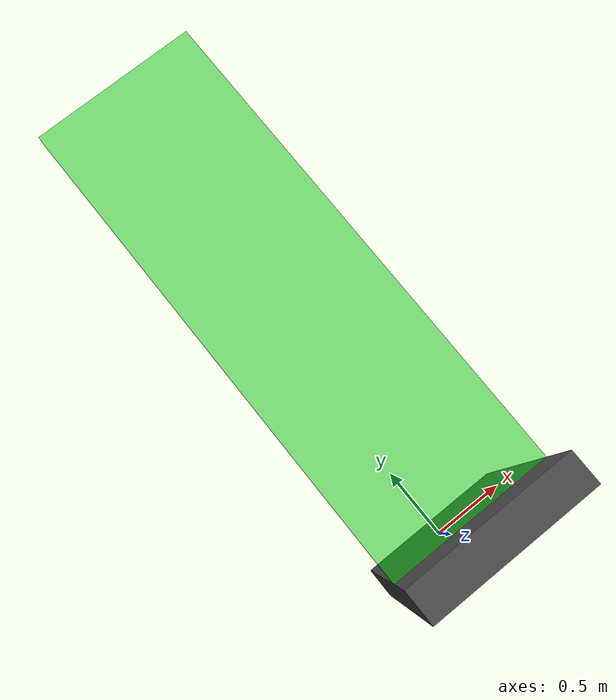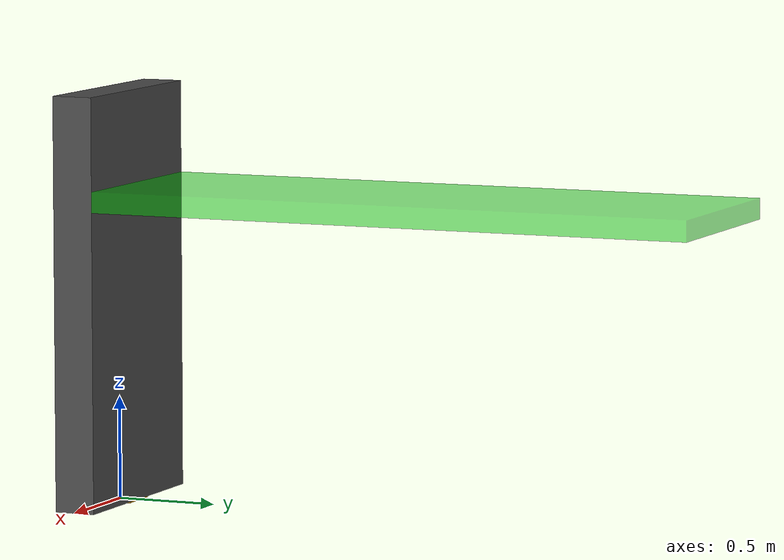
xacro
<?xml version="1.0"?>
<robot name="turn_table" xmlns:xacro="http://www.ros.org/wiki/xacro">

<xacro:include filename="$(find kuka_on_rail)/urdf/turn_table_macro.xacro" />
<xacro:turn_table prefix=""/>

</robot>

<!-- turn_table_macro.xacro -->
<robot xmlns:xacro="http://www.ros.org/wiki/xacro">

  <xacro:macro name="turn_table" params="prefix">

  <material name="grey">
    <color rgba="0.3 0.3 0.3 1.0"/>
  </material>
    <material name="green">
    <color rgba="0.0 0.8 0.0 0.5"/>
  </material>

  <link name="${prefix}base_link">
    <visual>
      <geometry>
        <box size="0.2 0.2 0.01"/>
      </geometry>
    </visual>
  </link>

  <link name="${prefix}support">
    <visual>
      <geometry>
        <box size="1 0.2 2"/>
      </geometry>
      <material name="grey"/>
    </visual>
    <collision>
      <geometry>
        <box size="1 0.2 2"/>
      </geometry>
    </collision>
  </link>

  <link name="${prefix}table">
    <visual>
      <geometry>
        <box size="1 3 0.1"/>
      </geometry>
      <origin xyz="0 1.6 0"/>
      <material name="green"/>
    </visual>
    <collision>
      <geometry>
        <box size="1 3 0.1"/>
      </geometry>
      <origin xyz="0 1.6 0"/>
    </collision>
  </link>

  <joint name="base_to_support" type="fixed">
    <parent link="${prefix}base_link"/>
    <child link="${prefix}support"/>
    <origin rpy="0 0 0" xyz="0 0 1"/>
  </joint>

  <joint name="support_to_table" type="revolute">
    <parent link="${prefix}support"/>
    <child link="${prefix}table"/>
    <axis xyz="0 1 0"/>
    <limit effort="1000.0" lower="-3.1415" upper="3.1415" velocity="0.5"/>
    <origin rpy="0 0 0" xyz="0 0 0.5"/>
  </joint>

  </xacro:macro>

</robot>
